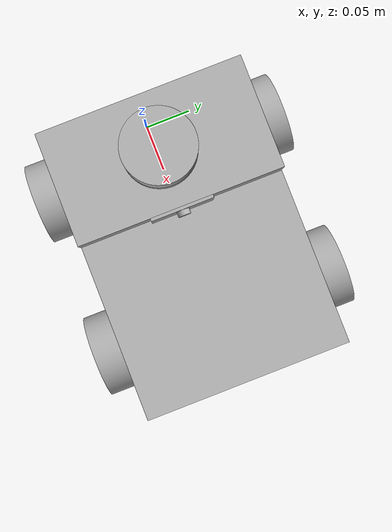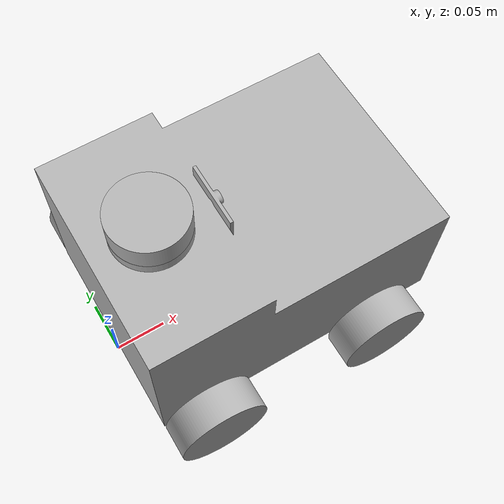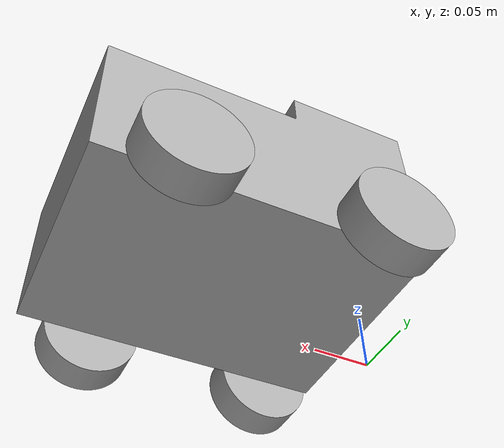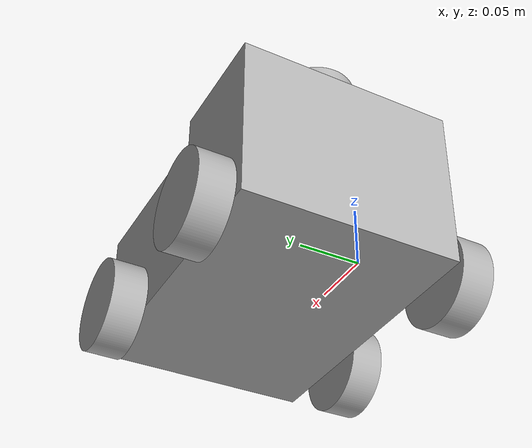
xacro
<?xml version="1.0" ?>
<robot name="dekut_amr" xmlns:xacro="http://www.ros.org/wiki/xacro">

<xacro:include filename="$(find dekut_amr_description)/urdf/materials.xacro" />
<xacro:include filename="$(find dekut_amr_description)/urdf/dekut_amr.gazebo" />

<!-- Include the ROS 2 control Xacro -->
<ros2_control name="GazeboSystem" type="system">
  <hardware>
    <plugin>gz_ros2_control/GazeboSimSystem</plugin>
  </hardware>

  <!-- Back-left wheel -->
  <joint name="bl_joint">
    <command_interface name="velocity"/>
    <state_interface name="velocity"/>
    <state_interface name="position"/>
  </joint>

  <!-- Back-right wheel -->
  <joint name="br_joint">
    <command_interface name="velocity"/>
    <state_interface name="velocity"/>
    <state_interface name="position"/>
  </joint>

  <!-- Front-left wheel -->
  <joint name="fl_joint">
    <command_interface name="velocity"/>
    <state_interface name="velocity"/>
    <state_interface name="position"/>
  </joint>

  <!-- Front-right wheel -->
  <joint name="fr_joint">
    <command_interface name="velocity"/>
    <state_interface name="velocity"/>
    <state_interface name="position"/>
  </joint>
</ros2_control>

<link name="base_link">
  <inertial>
    <origin xyz="0.13300586946780998 -3.735532610444361e-17 0.10471614133594144" rpy="0 0 0"/>
    <mass value="61.15997179266559"/>
    <inertia ixx="0.308303" iyy="0.512382" izz="0.610035" ixy="-0.0" iyz="-0.0" ixz="0.032202"/>
  </inertial>
  <visual>
    <origin xyz="0 0 0" rpy="0 0 0"/>
    <geometry>
      <mesh filename="file://$(find dekut_amr_description)/meshes/base_link.stl" scale="0.001 0.001 0.001"/>
    </geometry>
    <material name="silver"/>
  </visual>
  <collision>
    <origin xyz="0 0 0" rpy="0 0 0"/>
    <geometry>
      <mesh filename="file://$(find dekut_amr_description)/meshes/base_link.stl" scale="0.001 0.001 0.001"/>
    </geometry>
  </collision>
</link>

<link name="wheelbl_link_1">
  <inertial>
    <origin xyz="6.938893903907228e-17 0.010504645034502769 -1.3877787807814457e-17" rpy="0 0 0"/>
    <mass value="1.3803967660818925"/>
    <inertia ixx="0.000734" iyy="0.001247" izz="0.000734" ixy="0.0" iyz="-0.0" ixz="-0.0"/>
  </inertial>
  <visual>
    <origin xyz="-0.0425 -0.109 -0.0425" rpy="0 0 0"/>
    <geometry>
      <mesh filename="file://$(find dekut_amr_description)/meshes/wheelbl_link_1.stl" scale="0.001 0.001 0.001"/>
    </geometry>
    <material name="silver"/>
  </visual>
  <collision>
    <origin xyz="-0.0425 -0.109 -0.0425" rpy="0 0 0"/>
    <geometry>
      <mesh filename="file://$(find dekut_amr_description)/meshes/wheelbl_link_1.stl" scale="0.001 0.001 0.001"/>
    </geometry>
  </collision>
</link>

<link name="wheelbr_link_1">
  <inertial>
    <origin xyz="6.938893903907228e-17 -0.01050464503450281 -1.3877787807814457e-17" rpy="0 0 0"/>
    <mass value="1.3803967660818925"/>
    <inertia ixx="0.000734" iyy="0.001247" izz="0.000734" ixy="-0.0" iyz="-0.0" ixz="-0.0"/>
  </inertial>
  <visual>
    <origin xyz="-0.0425 0.109 -0.0425" rpy="0 0 0"/>
    <geometry>
      <mesh filename="file://$(find dekut_amr_description)/meshes/wheelbr_link_1.stl" scale="0.001 0.001 0.001"/>
    </geometry>
    <material name="silver"/>
  </visual>
  <collision>
    <origin xyz="-0.0425 0.109 -0.0425" rpy="0 0 0"/>
    <geometry>
      <mesh filename="file://$(find dekut_amr_description)/meshes/wheelbr_link_1.stl" scale="0.001 0.001 0.001"/>
    </geometry>
  </collision>
</link>

<link name="wheelfl_link_1">
  <inertial>
    <origin xyz="5.551115123125783e-17 0.010504645034502769 0.0" rpy="0 0 0"/>
    <mass value="1.3803967660818925"/>
    <inertia ixx="0.000734" iyy="0.001247" izz="0.000734" ixy="0.0" iyz="0.0" ixz="0.0"/>
  </inertial>
  <visual>
    <origin xyz="-0.21339 -0.109 -0.0425" rpy="0 0 0"/>
    <geometry>
      <mesh filename="file://$(find dekut_amr_description)/meshes/wheelfl_link_1.stl" scale="0.001 0.001 0.001"/>
    </geometry>
    <material name="silver"/>
  </visual>
  <collision>
    <origin xyz="-0.21339 -0.109 -0.0425" rpy="0 0 0"/>
    <geometry>
      <mesh filename="file://$(find dekut_amr_description)/meshes/wheelfl_link_1.stl" scale="0.001 0.001 0.001"/>
    </geometry>
  </collision>
</link>

<link name="wheelfr_link_1">
  <inertial>
    <origin xyz="5.551115123125783e-17 -0.01050464503450281 0.0" rpy="0 0 0"/>
    <mass value="1.3803967660818925"/>
    <inertia ixx="0.000734" iyy="0.001247" izz="0.000734" ixy="-0.0" iyz="-0.0" ixz="0.0"/>
  </inertial>
  <visual>
    <origin xyz="-0.21339 0.109 -0.0425" rpy="0 0 0"/>
    <geometry>
      <mesh filename="file://$(find dekut_amr_description)/meshes/wheelfr_link_1.stl" scale="0.001 0.001 0.001"/>
    </geometry>
    <material name="silver"/>
  </visual>
  <collision>
    <origin xyz="-0.21339 0.109 -0.0425" rpy="0 0 0"/>
    <geometry>
      <mesh filename="file://$(find dekut_amr_description)/meshes/wheelfr_link_1.stl" scale="0.001 0.001 0.001"/>
    </geometry>
  </collision>
</link>

<link name="lidar_link_1">
  <inertial>
    <origin xyz="2.7755575615628914e-17 6.391374769427968e-18 0.011555000000000037" rpy="0 0 0"/>
    <mass value="0.6981609656059645"/>
    <inertia ixx="0.000245" iyy="0.000245" izz="0.000428" ixy="0.0" iyz="0.0" ixz="0.0"/>
  </inertial>
  <visual>
    <origin xyz="-0.05464 -0.0 -0.20009" rpy="0 0 0"/>
    <geometry>
      <mesh filename="file://$(find dekut_amr_description)/meshes/lidar_link_1.stl" scale="0.001 0.001 0.001"/>
    </geometry>
    <material name="silver"/>
  </visual>
  <collision>
    <origin xyz="-0.05464 -0.0 -0.20009" rpy="0 0 0"/>
    <geometry>
      <mesh filename="file://$(find dekut_amr_description)/meshes/lidar_link_1.stl" scale="0.001 0.001 0.001"/>
    </geometry>
  </collision>
</link>

<link name="camera_link_1">
  <inertial>
    <origin xyz="0.0018785799726894203 7.125265209961044e-14 0.0005397086909801063" rpy="0 0 0"/>
    <mass value="0.04690232700887753"/>
    <inertia ixx="1.6e-05" iyy="3e-06" izz="1.3e-05" ixy="0.0" iyz="-0.0" ixz="-0.0"/>
  </inertial>
  <visual>
    <origin xyz="-0.10978 -0.0 -0.184974" rpy="0 0 0"/>
    <geometry>
      <mesh filename="file://$(find dekut_amr_description)/meshes/camera_link_1.stl" scale="0.001 0.001 0.001"/>
    </geometry>
    <material name="silver"/>
  </visual>
  <collision>
    <origin xyz="-0.10978 -0.0 -0.184974" rpy="0 0 0"/>
    <geometry>
      <mesh filename="file://$(find dekut_amr_description)/meshes/camera_link_1.stl" scale="0.001 0.001 0.001"/>
    </geometry>
  </collision>
</link>

<joint name="bl_joint" type="continuous">
  <origin xyz="0.0425 0.109 0.0425" rpy="0 0 0"/>
  <parent link="base_link"/>
  <child link="wheelbl_link_1"/>
  <axis xyz="0.0 1.0 0.0"/>
</joint>

<joint name="br_joint" type="continuous">
  <origin xyz="0.0425 -0.109 0.0425" rpy="0 0 0"/>
  <parent link="base_link"/>
  <child link="wheelbr_link_1"/>
  <axis xyz="0.0 1.0 0.0"/>
</joint>

<joint name="fl_joint" type="continuous">
  <origin xyz="0.21339 0.109 0.0425" rpy="0 0 0"/>
  <parent link="base_link"/>
  <child link="wheelfl_link_1"/>
  <axis xyz="0.0 1.0 0.0"/>
</joint>

<joint name="fr_joint" type="continuous">
  <origin xyz="0.21339 -0.109 0.0425" rpy="0 0 0"/>
  <parent link="base_link"/>
  <child link="wheelfr_link_1"/>
  <axis xyz="0.0 1.0 0.0"/>
</joint>

<joint name="lidar_joint" type="fixed">
  <origin xyz="0.05464 0.0 0.20009" rpy="0 0 0"/>
  <parent link="base_link"/>
  <child link="lidar_link_1"/>
</joint>

<joint name="camera_joint" type="fixed">
  <origin xyz="0.10978 0.0 0.184974" rpy="0 0 0"/>
  <parent link="base_link"/>
  <child link="camera_link_1"/>
</joint>

</robot>

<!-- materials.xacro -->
<robot name="dekut_amr" xmlns:xacro="http://www.ros.org/wiki/xacro">

  <!-- Silver material -->
  <material name="silver">
    <color rgba="0.700 0.700 0.700 1.000"/>
  </material>

  <!-- Blue material -->
  <material name="blue">
    <color rgba="0.000 0.000 1.000 1.000"/>
  </material>

  <!-- Red material -->
  <material name="red">
    <color rgba="1.000 0.000 0.000 1.000"/>
  </material>

</robot>

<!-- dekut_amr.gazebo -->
<robot name="dekut_amr" xmlns:xacro="http://www.ros.org/wiki/xacro" >

<xacro:property name="body_color" value="Gazebo/Silver" />

<gazebo>
  <plugin name="control" filename="libgazebo_ros_control.so"/>
</gazebo>
<gazebo reference="base_link">
  <material>${body_color}</material>
  <mu1>0.2</mu1>
  <mu2>0.2</mu2>
  <self_collide>true</self_collide>
  <gravity>true</gravity>
</gazebo>

<gazebo reference="wheelbl_link_1">
  <material>${body_color}</material>
  <mu1>0.2</mu1>
  <mu2>0.2</mu2>
  <self_collide>true</self_collide>
</gazebo>

<gazebo reference="wheelbr_link_1">
  <material>${body_color}</material>
  <mu1>0.2</mu1>
  <mu2>0.2</mu2>
  <self_collide>true</self_collide>
</gazebo>

<gazebo reference="wheelfl_link_1">
  <material>${body_color}</material>
  <mu1>0.2</mu1>
  <mu2>0.2</mu2>
  <self_collide>true</self_collide>
</gazebo>

<gazebo reference="wheelfr_link_1">
  <material>${body_color}</material>
  <mu1>0.2</mu1>
  <mu2>0.2</mu2>
  <self_collide>true</self_collide>
</gazebo>

<gazebo reference="lidar_link_1">
  <material>${body_color}</material>
  <mu1>0.2</mu1>
  <mu2>0.2</mu2>
  <self_collide>true</self_collide>
</gazebo>

<gazebo reference="camera_link_1">
  <material>${body_color}</material>
  <mu1>0.2</mu1>
  <mu2>0.2</mu2>
  <self_collide>true</self_collide>
</gazebo>

</robot>
